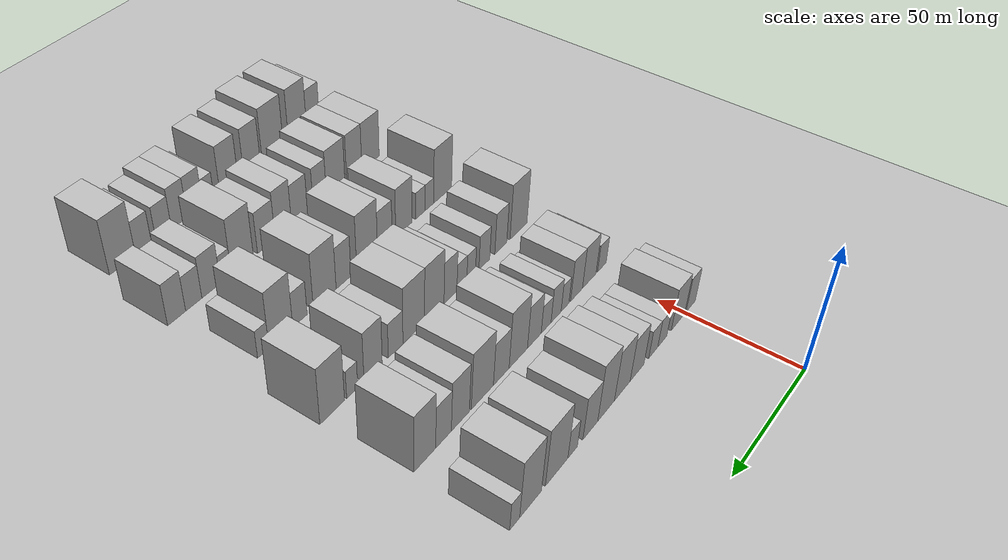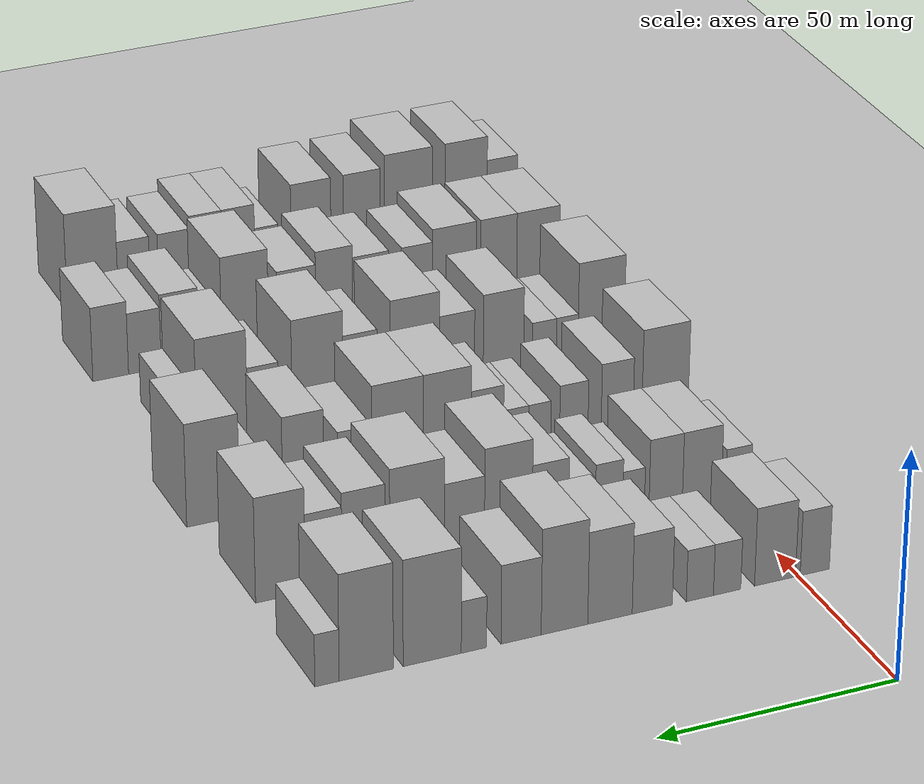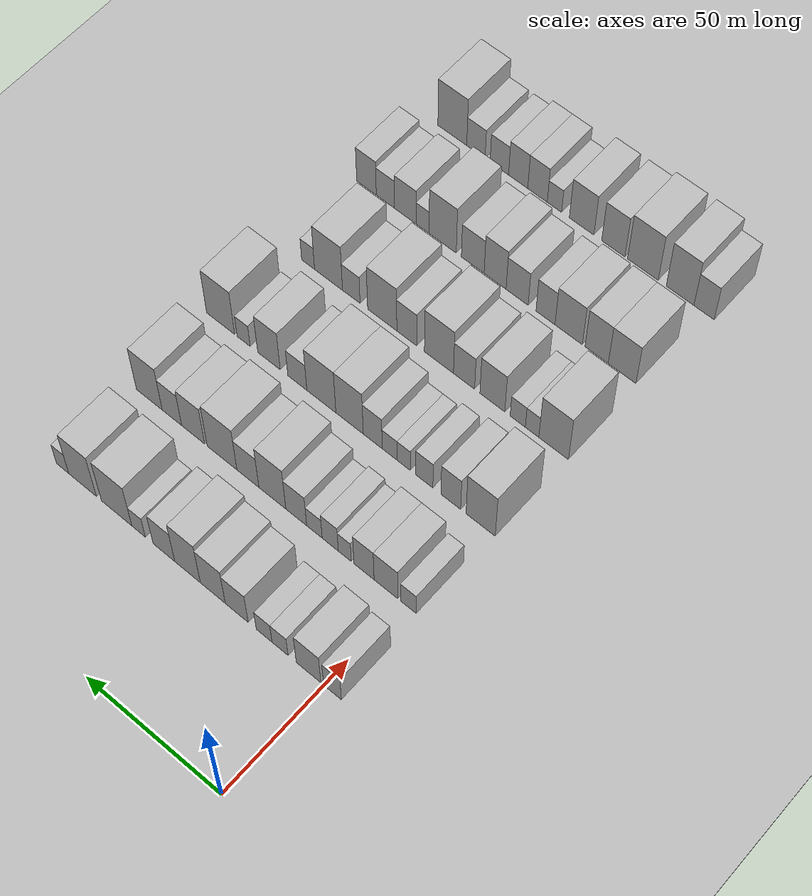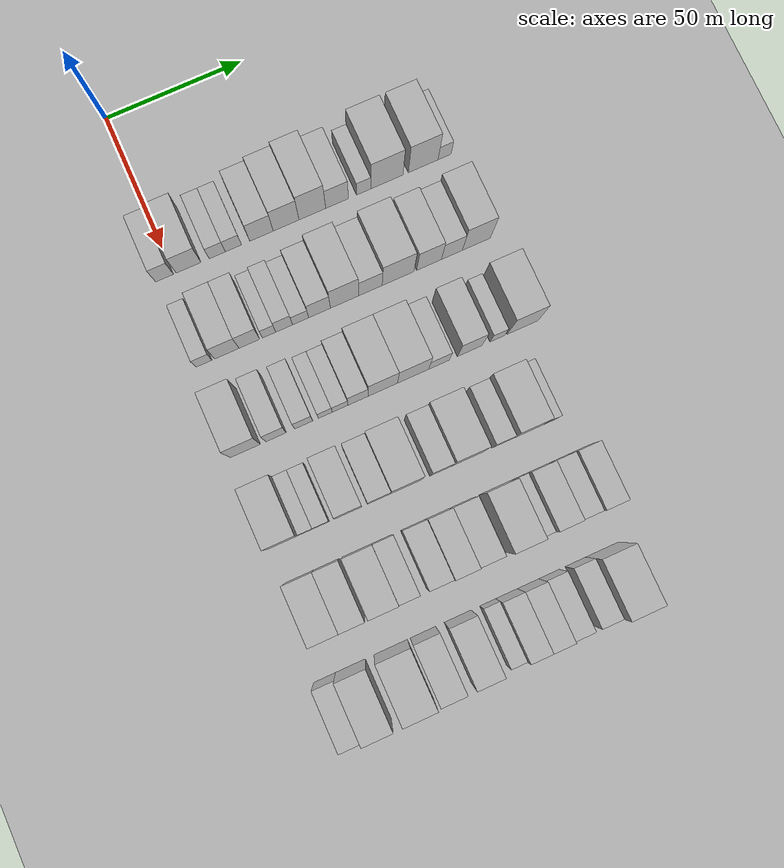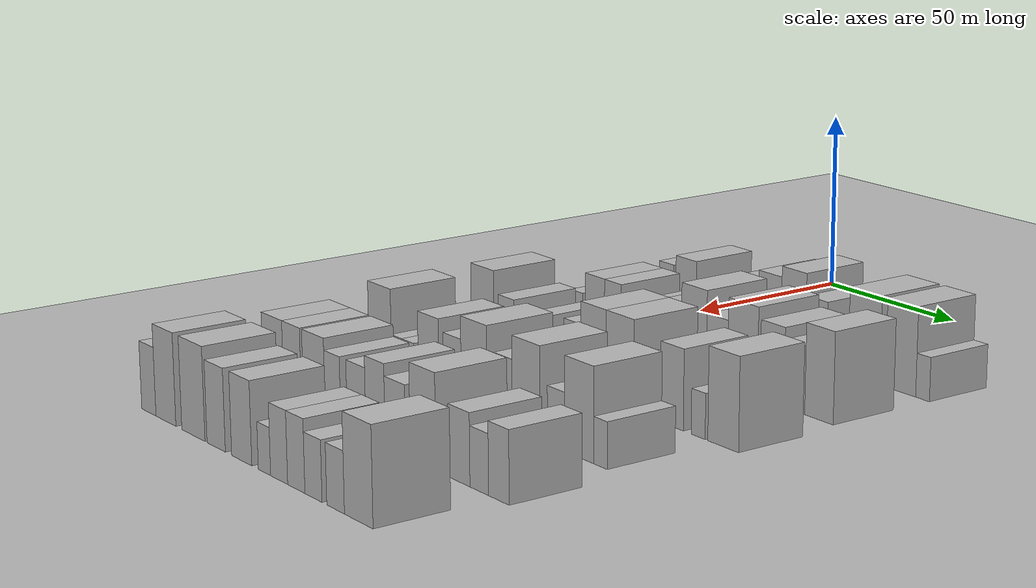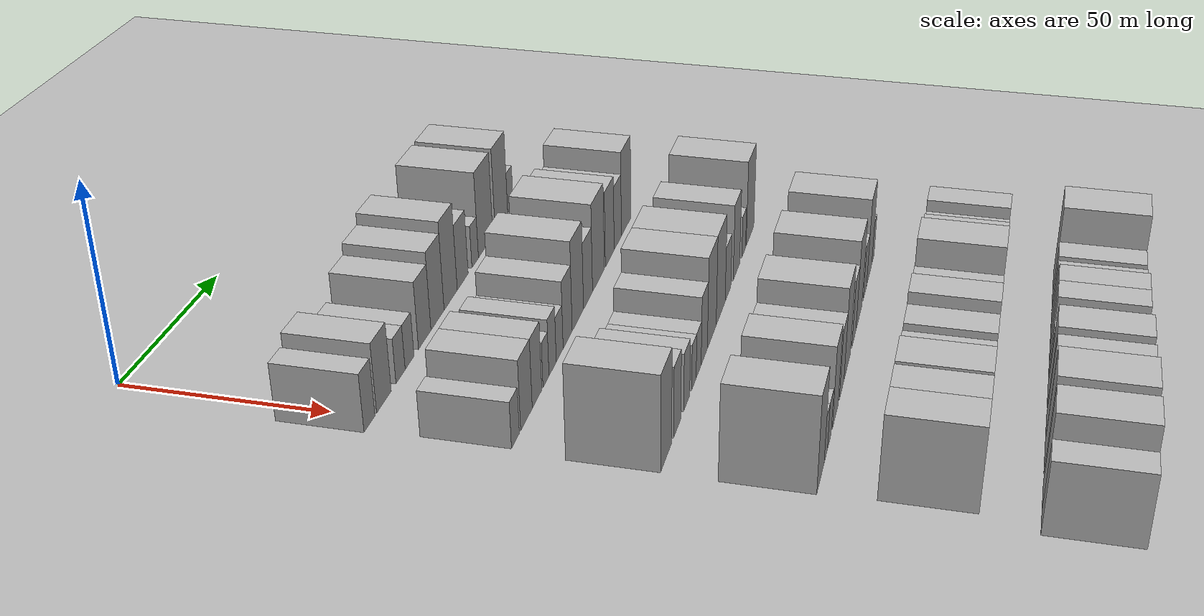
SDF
<sdf version="1.6">
 <world name="default">
  <include><name>ground_plane_1</name><uri>model://HANNAS_ground_plane</uri></include>
  <include>
   <name>ground_plane_2</name>
   <uri>model://HANNAS_ground_plane</uri>
   <pose>100 0 0  0 0 0</pose>
  </include>
  <model name="building_62">
   <static>1</static>
   <pose>50.0000 -3.1687 0 0.000000 0.000000 0.000000</pose>
   <link name="link">
    <pose>0 0 7.50 0 0 0</pose>
    <collision name="collision"><geometry><box><size>20.0000 6.4096 15.0000</size></box></geometry></collision>
    <visual name="visual">
     <cast_shadows>0</cast_shadows>
     <geometry><box><size>20.0000 6.4096 15.0000</size></box></geometry>
     <material>
      <script>
       <uri>model://HANNAS_wall/materials/scripts</uri>
       <uri>model://HANNAS_wall/materials/textures</uri>
       <name>vrc/HANNAS_wall</name>
      </script>
     </material>
    </visual>
   </link>
  </model>
  <model name="building_63">
   <static>1</static>
   <pose>50.0000 5.5113 0 0.000000 0.000000 0.000000</pose>
   <link name="link">
    <pose>0 0 9.00 0 0 0</pose>
    <collision name="collision"><geometry><box><size>20.0000 8.9502 18.0000</size></box></geometry></collision>
    <visual name="visual">
     <cast_shadows>0</cast_shadows>
     <geometry><box><size>20.0000 8.9502 18.0000</size></box></geometry>
     <material>
      <script>
       <uri>model://HANNAS_wall/materials/scripts</uri>
       <uri>model://HANNAS_wall/materials/textures</uri>
       <name>vrc/HANNAS_wall</name>
      </script>
     </material>
    </visual>
   </link>
  </model>
  <model name="building_64">
   <static>1</static>
   <pose>50.0000 15.9355 0 0.000000 0.000000 0.000000</pose>
   <link name="link">
    <pose>0 0 6.00 0 0 0</pose>
    <collision name="collision"><geometry><box><size>20.0000 5.8982 12.0000</size></box></geometry></collision>
    <visual name="visual">
     <cast_shadows>0</cast_shadows>
     <geometry><box><size>20.0000 5.8982 12.0000</size></box></geometry>
     <material>
      <script>
       <uri>model://HANNAS_wall/materials/scripts</uri>
       <uri>model://HANNAS_wall/materials/textures</uri>
       <name>vrc/HANNAS_wall</name>
      </script>
     </material>
    </visual>
   </link>
  </model>
  <model name="building_65">
   <static>1</static>
   <pose>50.0000 21.8032 0 0.000000 0.000000 0.000000</pose>
   <link name="link">
    <pose>0 0 6.00 0 0 0</pose>
    <collision name="collision"><geometry><box><size>20.0000 5.8372 12.0000</size></box></geometry></collision>
    <visual name="visual">
     <cast_shadows>0</cast_shadows>
     <geometry><box><size>20.0000 5.8372 12.0000</size></box></geometry>
     <material>
      <script>
       <uri>model://HANNAS_wall/materials/scripts</uri>
       <uri>model://HANNAS_wall/materials/textures</uri>
       <name>vrc/HANNAS_wall</name>
      </script>
     </material>
    </visual>
   </link>
  </model>
  <model name="building_66">
   <static>1</static>
   <pose>50.0000 32.0114 0 0.000000 0.000000 0.000000</pose>
   <link name="link">
    <pose>0 0 9.00 0 0 0</pose>
    <collision name="collision"><geometry><box><size>20.0000 8.5792 18.0000</size></box></geometry></collision>
    <visual name="visual">
     <cast_shadows>0</cast_shadows>
     <geometry><box><size>20.0000 8.5792 18.0000</size></box></geometry>
     <material>
      <script>
       <uri>model://HANNAS_wall/materials/scripts</uri>
       <uri>model://HANNAS_wall/materials/textures</uri>
       <name>vrc/HANNAS_wall</name>
      </script>
     </material>
    </visual>
   </link>
  </model>
  <model name="building_67">
   <static>1</static>
   <pose>50.0000 41.0126 0 0.000000 0.000000 0.000000</pose>
   <link name="link">
    <pose>0 0 10.50 0 0 0</pose>
    <collision name="collision"><geometry><box><size>20.0000 9.4231 21.0000</size></box></geometry></collision>
    <visual name="visual">
     <cast_shadows>0</cast_shadows>
     <geometry><box><size>20.0000 9.4231 21.0000</size></box></geometry>
     <material>
      <script>
       <uri>model://HANNAS_wall/materials/scripts</uri>
       <uri>model://HANNAS_wall/materials/textures</uri>
       <name>vrc/HANNAS_wall</name>
      </script>
     </material>
    </visual>
   </link>
  </model>
  <model name="building_68">
   <static>1</static>
   <pose>50.0000 50.6212 0 0.000000 0.000000 0.000000</pose>
   <link name="link">
    <pose>0 0 12.00 0 0 0</pose>
    <collision name="collision"><geometry><box><size>20.0000 9.7940 24.0000</size></box></geometry></collision>
    <visual name="visual">
     <cast_shadows>0</cast_shadows>
     <geometry><box><size>20.0000 9.7940 24.0000</size></box></geometry>
     <material>
      <script>
       <uri>model://HANNAS_wall/materials/scripts</uri>
       <uri>model://HANNAS_wall/materials/textures</uri>
       <name>vrc/HANNAS_wall</name>
      </script>
     </material>
    </visual>
   </link>
  </model>
  <model name="building_69">
   <static>1</static>
   <pose>50.0000 59.7070 0 0.000000 0.000000 0.000000</pose>
   <link name="link">
    <pose>0 0 9.00 0 0 0</pose>
    <collision name="collision"><geometry><box><size>20.0000 8.3777 18.0000</size></box></geometry></collision>
    <visual name="visual">
     <cast_shadows>0</cast_shadows>
     <geometry><box><size>20.0000 8.3777 18.0000</size></box></geometry>
     <material>
      <script>
       <uri>model://HANNAS_wall/materials/scripts</uri>
       <uri>model://HANNAS_wall/materials/textures</uri>
       <name>vrc/HANNAS_wall</name>
      </script>
     </material>
    </visual>
   </link>
  </model>
  <model name="building_70">
   <static>1</static>
   <pose>50.0000 69.5193 0 0.000000 0.000000 0.000000</pose>
   <link name="link">
    <pose>0 0 6.00 0 0 0</pose>
    <collision name="collision"><geometry><box><size>20.0000 5.2468 12.0000</size></box></geometry></collision>
    <visual name="visual">
     <cast_shadows>0</cast_shadows>
     <geometry><box><size>20.0000 5.2468 12.0000</size></box></geometry>
     <material>
      <script>
       <uri>model://HANNAS_wall/materials/scripts</uri>
       <uri>model://HANNAS_wall/materials/textures</uri>
       <name>vrc/HANNAS_wall</name>
      </script>
     </material>
    </visual>
   </link>
  </model>
  <model name="building_71">
   <static>1</static>
   <pose>50.0000 78.1094 0 0.000000 0.000000 0.000000</pose>
   <link name="link">
    <pose>0 0 12.00 0 0 0</pose>
    <collision name="collision"><geometry><box><size>20.0000 11.9334 24.0000</size></box></geometry></collision>
    <visual name="visual">
     <cast_shadows>0</cast_shadows>
     <geometry><box><size>20.0000 11.9334 24.0000</size></box></geometry>
     <material>
      <script>
       <uri>model://HANNAS_wall/materials/scripts</uri>
       <uri>model://HANNAS_wall/materials/textures</uri>
       <name>vrc/HANNAS_wall</name>
      </script>
     </material>
    </visual>
   </link>
  </model>
  <model name="building_72">
   <static>1</static>
   <pose>50.0000 91.5852 0 0.000000 0.000000 0.000000</pose>
   <link name="link">
    <pose>0 0 12.00 0 0 0</pose>
    <collision name="collision"><geometry><box><size>20.0000 11.0183 24.0000</size></box></geometry></collision>
    <visual name="visual">
     <cast_shadows>0</cast_shadows>
     <geometry><box><size>20.0000 11.0183 24.0000</size></box></geometry>
     <material>
      <script>
       <uri>model://HANNAS_wall/materials/scripts</uri>
       <uri>model://HANNAS_wall/materials/textures</uri>
       <name>vrc/HANNAS_wall</name>
      </script>
     </material>
    </visual>
   </link>
  </model>
  <model name="building_73">
   <static>1</static>
   <pose>50.0000 99.5503 0 0.000000 0.000000 0.000000</pose>
   <link name="link">
    <pose>0 0 6.00 0 0 0</pose>
    <collision name="collision"><geometry><box><size>20.0000 4.9118 12.0000</size></box></geometry></collision>
    <visual name="visual">
     <cast_shadows>0</cast_shadows>
     <geometry><box><size>20.0000 4.9118 12.0000</size></box></geometry>
     <material>
      <script>
       <uri>model://HANNAS_wall/materials/scripts</uri>
       <uri>model://HANNAS_wall/materials/textures</uri>
       <name>vrc/HANNAS_wall</name>
      </script>
     </material>
    </visual>
   </link>
  </model>
  <model name="building_182">
   <static>1</static>
   <pose>82.0000 -2.3805 0 0.000000 0.000000 0.000000</pose>
   <link name="link">
    <pose>0 0 6.00 0 0 0</pose>
    <collision name="collision"><geometry><box><size>20.0000 5.6722 12.0000</size></box></geometry></collision>
    <visual name="visual">
     <cast_shadows>0</cast_shadows>
     <geometry><box><size>20.0000 5.6722 12.0000</size></box></geometry>
     <material>
      <script>
       <uri>model://HANNAS_wall/materials/scripts</uri>
       <uri>model://HANNAS_wall/materials/textures</uri>
       <name>vrc/HANNAS_wall</name>
      </script>
     </material>
    </visual>
   </link>
  </model>
  <model name="building_183">
   <static>1</static>
   <pose>82.0000 5.8020 0 0.000000 0.000000 0.000000</pose>
   <link name="link">
    <pose>0 0 9.00 0 0 0</pose>
    <collision name="collision"><geometry><box><size>20.0000 8.6927 18.0000</size></box></geometry></collision>
    <visual name="visual">
     <cast_shadows>0</cast_shadows>
     <geometry><box><size>20.0000 8.6927 18.0000</size></box></geometry>
     <material>
      <script>
       <uri>model://HANNAS_wall/materials/scripts</uri>
       <uri>model://HANNAS_wall/materials/textures</uri>
       <name>vrc/HANNAS_wall</name>
      </script>
     </material>
    </visual>
   </link>
  </model>
  <model name="building_184">
   <static>1</static>
   <pose>82.0000 13.8567 0 0.000000 0.000000 0.000000</pose>
   <link name="link">
    <pose>0 0 9.00 0 0 0</pose>
    <collision name="collision"><geometry><box><size>20.0000 7.4168 18.0000</size></box></geometry></collision>
    <visual name="visual">
     <cast_shadows>0</cast_shadows>
     <geometry><box><size>20.0000 7.4168 18.0000</size></box></geometry>
     <material>
      <script>
       <uri>model://HANNAS_wall/materials/scripts</uri>
       <uri>model://HANNAS_wall/materials/textures</uri>
       <name>vrc/HANNAS_wall</name>
      </script>
     </material>
    </visual>
   </link>
  </model>
  <model name="building_185">
   <static>1</static>
   <pose>82.0000 20.9724 0 0.000000 0.000000 0.000000</pose>
   <link name="link">
    <pose>0 0 6.00 0 0 0</pose>
    <collision name="collision"><geometry><box><size>20.0000 4.8146 12.0000</size></box></geometry></collision>
    <visual name="visual">
     <cast_shadows>0</cast_shadows>
     <geometry><box><size>20.0000 4.8146 12.0000</size></box></geometry>
     <material>
      <script>
       <uri>model://HANNAS_wall/materials/scripts</uri>
       <uri>model://HANNAS_wall/materials/textures</uri>
       <name>vrc/HANNAS_wall</name>
      </script>
     </material>
    </visual>
   </link>
  </model>
  <model name="building_186">
   <static>1</static>
   <pose>82.0000 26.3966 0 0.000000 0.000000 0.000000</pose>
   <link name="link">
    <pose>0 0 7.50 0 0 0</pose>
    <collision name="collision"><geometry><box><size>20.0000 6.0336 15.0000</size></box></geometry></collision>
    <visual name="visual">
     <cast_shadows>0</cast_shadows>
     <geometry><box><size>20.0000 6.0336 15.0000</size></box></geometry>
     <material>
      <script>
       <uri>model://HANNAS_wall/materials/scripts</uri>
       <uri>model://HANNAS_wall/materials/textures</uri>
       <name>vrc/HANNAS_wall</name>
      </script>
     </material>
    </visual>
   </link>
  </model>
  <model name="building_187">
   <static>1</static>
   <pose>82.0000 32.3226 0 0.000000 0.000000 0.000000</pose>
   <link name="link">
    <pose>0 0 6.00 0 0 0</pose>
    <collision name="collision"><geometry><box><size>20.0000 5.8184 12.0000</size></box></geometry></collision>
    <visual name="visual">
     <cast_shadows>0</cast_shadows>
     <geometry><box><size>20.0000 5.8184 12.0000</size></box></geometry>
     <material>
      <script>
       <uri>model://HANNAS_wall/materials/scripts</uri>
       <uri>model://HANNAS_wall/materials/textures</uri>
       <name>vrc/HANNAS_wall</name>
      </script>
     </material>
    </visual>
   </link>
  </model>
  <model name="building_188">
   <static>1</static>
   <pose>82.0000 39.1834 0 0.000000 0.000000 0.000000</pose>
   <link name="link">
    <pose>0 0 9.00 0 0 0</pose>
    <collision name="collision"><geometry><box><size>20.0000 7.9033 18.0000</size></box></geometry></collision>
    <visual name="visual">
     <cast_shadows>0</cast_shadows>
     <geometry><box><size>20.0000 7.9033 18.0000</size></box></geometry>
     <material>
      <script>
       <uri>model://HANNAS_wall/materials/scripts</uri>
       <uri>model://HANNAS_wall/materials/textures</uri>
       <name>vrc/HANNAS_wall</name>
      </script>
     </material>
    </visual>
   </link>
  </model>
  <model name="building_189">
   <static>1</static>
   <pose>82.0000 48.2809 0 0.000000 0.000000 0.000000</pose>
   <link name="link">
    <pose>0 0 12.00 0 0 0</pose>
    <collision name="collision"><geometry><box><size>20.0000 10.2916 24.0000</size></box></geometry></collision>
    <visual name="visual">
     <cast_shadows>0</cast_shadows>
     <geometry><box><size>20.0000 10.2916 24.0000</size></box></geometry>
     <material>
      <script>
       <uri>model://HANNAS_wall/materials/scripts</uri>
       <uri>model://HANNAS_wall/materials/textures</uri>
       <name>vrc/HANNAS_wall</name>
      </script>
     </material>
    </visual>
   </link>
  </model>
  <model name="building_190">
   <static>1</static>
   <pose>82.0000 57.6789 0 0.000000 0.000000 0.000000</pose>
   <link name="link">
    <pose>0 0 9.00 0 0 0</pose>
    <collision name="collision"><geometry><box><size>20.0000 8.5044 18.0000</size></box></geometry></collision>
    <visual name="visual">
     <cast_shadows>0</cast_shadows>
     <geometry><box><size>20.0000 8.5044 18.0000</size></box></geometry>
     <material>
      <script>
       <uri>model://HANNAS_wall/materials/scripts</uri>
       <uri>model://HANNAS_wall/materials/textures</uri>
       <name>vrc/HANNAS_wall</name>
      </script>
     </material>
    </visual>
   </link>
  </model>
  <model name="building_191">
   <static>1</static>
   <pose>82.0000 67.7408 0 0.000000 0.000000 0.000000</pose>
   <link name="link">
    <pose>0 0 12.00 0 0 0</pose>
    <collision name="collision"><geometry><box><size>20.0000 11.6195 24.0000</size></box></geometry></collision>
    <visual name="visual">
     <cast_shadows>0</cast_shadows>
     <geometry><box><size>20.0000 11.6195 24.0000</size></box></geometry>
     <material>
      <script>
       <uri>model://HANNAS_wall/materials/scripts</uri>
       <uri>model://HANNAS_wall/materials/textures</uri>
       <name>vrc/HANNAS_wall</name>
      </script>
     </material>
    </visual>
   </link>
  </model>
  <model name="building_192">
   <static>1</static>
   <pose>82.0000 79.0883 0 0.000000 0.000000 0.000000</pose>
   <link name="link">
    <pose>0 0 10.50 0 0 0</pose>
    <collision name="collision"><geometry><box><size>20.0000 9.0754 21.0000</size></box></geometry></collision>
    <visual name="visual">
     <cast_shadows>0</cast_shadows>
     <geometry><box><size>20.0000 9.0754 21.0000</size></box></geometry>
     <material>
      <script>
       <uri>model://HANNAS_wall/materials/scripts</uri>
       <uri>model://HANNAS_wall/materials/textures</uri>
       <name>vrc/HANNAS_wall</name>
      </script>
     </material>
    </visual>
   </link>
  </model>
  <model name="building_193">
   <static>1</static>
   <pose>82.0000 87.4748 0 0.000000 0.000000 0.000000</pose>
   <link name="link">
    <pose>0 0 9.00 0 0 0</pose>
    <collision name="collision"><geometry><box><size>20.0000 7.6976 18.0000</size></box></geometry></collision>
    <visual name="visual">
     <cast_shadows>0</cast_shadows>
     <geometry><box><size>20.0000 7.6976 18.0000</size></box></geometry>
     <material>
      <script>
       <uri>model://HANNAS_wall/materials/scripts</uri>
       <uri>model://HANNAS_wall/materials/textures</uri>
       <name>vrc/HANNAS_wall</name>
      </script>
     </material>
    </visual>
   </link>
  </model>
  <model name="building_194">
   <static>1</static>
   <pose>82.0000 96.5035 0 0.000000 0.000000 0.000000</pose>
   <link name="link">
    <pose>0 0 12.00 0 0 0</pose>
    <collision name="collision"><geometry><box><size>20.0000 10.3599 24.0000</size></box></geometry></collision>
    <visual name="visual">
     <cast_shadows>0</cast_shadows>
     <geometry><box><size>20.0000 10.3599 24.0000</size></box></geometry>
     <material>
      <script>
       <uri>model://HANNAS_wall/materials/scripts</uri>
       <uri>model://HANNAS_wall/materials/textures</uri>
       <name>vrc/HANNAS_wall</name>
      </script>
     </material>
    </visual>
   </link>
  </model>
  <model name="building_306">
   <static>1</static>
   <pose>114.0000 -1.3001 0 0.000000 0.000000 0.000000</pose>
   <link name="link">
    <pose>0 0 12.00 0 0 0</pose>
    <collision name="collision"><geometry><box><size>20.0000 10.6299 24.0000</size></box></geometry></collision>
    <visual name="visual">
     <cast_shadows>0</cast_shadows>
     <geometry><box><size>20.0000 10.6299 24.0000</size></box></geometry>
     <material>
      <script>
       <uri>model://HANNAS_wall/materials/scripts</uri>
       <uri>model://HANNAS_wall/materials/textures</uri>
       <name>vrc/HANNAS_wall</name>
      </script>
     </material>
    </visual>
   </link>
  </model>
  <model name="building_307">
   <static>1</static>
   <pose>114.0000 9.6383 0 0.000000 0.000000 0.000000</pose>
   <link name="link">
    <pose>0 0 9.00 0 0 0</pose>
    <collision name="collision"><geometry><box><size>20.0000 7.2469 18.0000</size></box></geometry></collision>
    <visual name="visual">
     <cast_shadows>0</cast_shadows>
     <geometry><box><size>20.0000 7.2469 18.0000</size></box></geometry>
     <material>
      <script>
       <uri>model://HANNAS_wall/materials/scripts</uri>
       <uri>model://HANNAS_wall/materials/textures</uri>
       <name>vrc/HANNAS_wall</name>
      </script>
     </material>
    </visual>
   </link>
  </model>
  <model name="building_308">
   <static>1</static>
   <pose>114.0000 19.4652 0 0.000000 0.000000 0.000000</pose>
   <link name="link">
    <pose>0 0 7.50 0 0 0</pose>
    <collision name="collision"><geometry><box><size>20.0000 6.4070 15.0000</size></box></geometry></collision>
    <visual name="visual">
     <cast_shadows>0</cast_shadows>
     <geometry><box><size>20.0000 6.4070 15.0000</size></box></geometry>
     <material>
      <script>
       <uri>model://HANNAS_wall/materials/scripts</uri>
       <uri>model://HANNAS_wall/materials/textures</uri>
       <name>vrc/HANNAS_wall</name>
      </script>
     </material>
    </visual>
   </link>
  </model>
  <model name="building_309">
   <static>1</static>
   <pose>114.0000 27.1573 0 0.000000 0.000000 0.000000</pose>
   <link name="link">
    <pose>0 0 6.00 0 0 0</pose>
    <collision name="collision"><geometry><box><size>20.0000 4.9774 12.0000</size></box></geometry></collision>
    <visual name="visual">
     <cast_shadows>0</cast_shadows>
     <geometry><box><size>20.0000 4.9774 12.0000</size></box></geometry>
     <material>
      <script>
       <uri>model://HANNAS_wall/materials/scripts</uri>
       <uri>model://HANNAS_wall/materials/textures</uri>
       <name>vrc/HANNAS_wall</name>
      </script>
     </material>
    </visual>
   </link>
  </model>
  <model name="building_310">
   <static>1</static>
   <pose>114.0000 32.4495 0 0.000000 0.000000 0.000000</pose>
   <link name="link">
    <pose>0 0 6.00 0 0 0</pose>
    <collision name="collision"><geometry><box><size>20.0000 5.6070 12.0000</size></box></geometry></collision>
    <visual name="visual">
     <cast_shadows>0</cast_shadows>
     <geometry><box><size>20.0000 5.6070 12.0000</size></box></geometry>
     <material>
      <script>
       <uri>model://HANNAS_wall/materials/scripts</uri>
       <uri>model://HANNAS_wall/materials/textures</uri>
       <name>vrc/HANNAS_wall</name>
      </script>
     </material>
    </visual>
   </link>
  </model>
  <model name="building_311">
   <static>1</static>
   <pose>114.0000 38.8557 0 0.000000 0.000000 0.000000</pose>
   <link name="link">
    <pose>0 0 9.00 0 0 0</pose>
    <collision name="collision"><geometry><box><size>20.0000 7.2054 18.0000</size></box></geometry></collision>
    <visual name="visual">
     <cast_shadows>0</cast_shadows>
     <geometry><box><size>20.0000 7.2054 18.0000</size></box></geometry>
     <material>
      <script>
       <uri>model://HANNAS_wall/materials/scripts</uri>
       <uri>model://HANNAS_wall/materials/textures</uri>
       <name>vrc/HANNAS_wall</name>
      </script>
     </material>
    </visual>
   </link>
  </model>
  <model name="building_312">
   <static>1</static>
   <pose>114.0000 47.7189 0 0.000000 0.000000 0.000000</pose>
   <link name="link">
    <pose>0 0 12.00 0 0 0</pose>
    <collision name="collision"><geometry><box><size>20.0000 10.5210 24.0000</size></box></geometry></collision>
    <visual name="visual">
     <cast_shadows>0</cast_shadows>
     <geometry><box><size>20.0000 10.5210 24.0000</size></box></geometry>
     <material>
      <script>
       <uri>model://HANNAS_wall/materials/scripts</uri>
       <uri>model://HANNAS_wall/materials/textures</uri>
       <name>vrc/HANNAS_wall</name>
      </script>
     </material>
    </visual>
   </link>
  </model>
  <model name="building_313">
   <static>1</static>
   <pose>114.0000 58.6120 0 0.000000 0.000000 0.000000</pose>
   <link name="link">
    <pose>0 0 12.00 0 0 0</pose>
    <collision name="collision"><geometry><box><size>20.0000 11.2652 24.0000</size></box></geometry></collision>
    <visual name="visual">
     <cast_shadows>0</cast_shadows>
     <geometry><box><size>20.0000 11.2652 24.0000</size></box></geometry>
     <material>
      <script>
       <uri>model://HANNAS_wall/materials/scripts</uri>
       <uri>model://HANNAS_wall/materials/textures</uri>
       <name>vrc/HANNAS_wall</name>
      </script>
     </material>
    </visual>
   </link>
  </model>
  <model name="building_314">
   <static>1</static>
   <pose>114.0000 67.9713 0 0.000000 0.000000 0.000000</pose>
   <link name="link">
    <pose>0 0 7.50 0 0 0</pose>
    <collision name="collision"><geometry><box><size>20.0000 7.4534 15.0000</size></box></geometry></collision>
    <visual name="visual">
     <cast_shadows>0</cast_shadows>
     <geometry><box><size>20.0000 7.4534 15.0000</size></box></geometry>
     <material>
      <script>
       <uri>model://HANNAS_wall/materials/scripts</uri>
       <uri>model://HANNAS_wall/materials/textures</uri>
       <name>vrc/HANNAS_wall</name>
      </script>
     </material>
    </visual>
   </link>
  </model>
  <model name="building_315">
   <static>1</static>
   <pose>114.0000 79.1511 0 0.000000 0.000000 0.000000</pose>
   <link name="link">
    <pose>0 0 10.50 0 0 0</pose>
    <collision name="collision"><geometry><box><size>20.0000 8.9062 21.0000</size></box></geometry></collision>
    <visual name="visual">
     <cast_shadows>0</cast_shadows>
     <geometry><box><size>20.0000 8.9062 21.0000</size></box></geometry>
     <material>
      <script>
       <uri>model://HANNAS_wall/materials/scripts</uri>
       <uri>model://HANNAS_wall/materials/textures</uri>
       <name>vrc/HANNAS_wall</name>
      </script>
     </material>
    </visual>
   </link>
  </model>
  <model name="building_316">
   <static>1</static>
   <pose>114.0000 89.2187 0 0.000000 0.000000 0.000000</pose>
   <link name="link">
    <pose>0 0 6.00 0 0 0</pose>
    <collision name="collision"><geometry><box><size>20.0000 5.2290 12.0000</size></box></geometry></collision>
    <visual name="visual">
     <cast_shadows>0</cast_shadows>
     <geometry><box><size>20.0000 5.2290 12.0000</size></box></geometry>
     <material>
      <script>
       <uri>model://HANNAS_wall/materials/scripts</uri>
       <uri>model://HANNAS_wall/materials/textures</uri>
       <name>vrc/HANNAS_wall</name>
      </script>
     </material>
    </visual>
   </link>
  </model>
  <model name="building_317">
   <static>1</static>
   <pose>114.0000 98.4865 0 0.000000 0.000000 0.000000</pose>
   <link name="link">
    <pose>0 0 12.00 0 0 0</pose>
    <collision name="collision"><geometry><box><size>20.0000 11.3066 24.0000</size></box></geometry></collision>
    <visual name="visual">
     <cast_shadows>0</cast_shadows>
     <geometry><box><size>20.0000 11.3066 24.0000</size></box></geometry>
     <material>
      <script>
       <uri>model://HANNAS_wall/materials/scripts</uri>
       <uri>model://HANNAS_wall/materials/textures</uri>
       <name>vrc/HANNAS_wall</name>
      </script>
     </material>
    </visual>
   </link>
  </model>
  <model name="building_423">
   <static>1</static>
   <pose>146.0000 -1.5550 0 0.000000 0.000000 0.000000</pose>
   <link name="link">
    <pose>0 0 12.00 0 0 0</pose>
    <collision name="collision"><geometry><box><size>20.0000 10.8734 24.0000</size></box></geometry></collision>
    <visual name="visual">
     <cast_shadows>0</cast_shadows>
     <geometry><box><size>20.0000 10.8734 24.0000</size></box></geometry>
     <material>
      <script>
       <uri>model://HANNAS_wall/materials/scripts</uri>
       <uri>model://HANNAS_wall/materials/textures</uri>
       <name>vrc/HANNAS_wall</name>
      </script>
     </material>
    </visual>
   </link>
  </model>
  <model name="building_424">
   <static>1</static>
   <pose>146.0000 6.3754 0 0.000000 0.000000 0.000000</pose>
   <link name="link">
    <pose>0 0 6.00 0 0 0</pose>
    <collision name="collision"><geometry><box><size>20.0000 4.9874 12.0000</size></box></geometry></collision>
    <visual name="visual">
     <cast_shadows>0</cast_shadows>
     <geometry><box><size>20.0000 4.9874 12.0000</size></box></geometry>
     <material>
      <script>
       <uri>model://HANNAS_wall/materials/scripts</uri>
       <uri>model://HANNAS_wall/materials/textures</uri>
       <name>vrc/HANNAS_wall</name>
      </script>
     </material>
    </visual>
   </link>
  </model>
  <model name="building_425">
   <static>1</static>
   <pose>146.0000 11.6806 0 0.000000 0.000000 0.000000</pose>
   <link name="link">
    <pose>0 0 6.00 0 0 0</pose>
    <collision name="collision"><geometry><box><size>20.0000 5.6230 12.0000</size></box></geometry></collision>
    <visual name="visual">
     <cast_shadows>0</cast_shadows>
     <geometry><box><size>20.0000 5.6230 12.0000</size></box></geometry>
     <material>
      <script>
       <uri>model://HANNAS_wall/materials/scripts</uri>
       <uri>model://HANNAS_wall/materials/textures</uri>
       <name>vrc/HANNAS_wall</name>
      </script>
     </material>
    </visual>
   </link>
  </model>
  <model name="building_426">
   <static>1</static>
   <pose>146.0000 21.1675 0 0.000000 0.000000 0.000000</pose>
   <link name="link">
    <pose>0 0 10.50 0 0 0</pose>
    <collision name="collision"><geometry><box><size>20.0000 9.3507 21.0000</size></box></geometry></collision>
    <visual name="visual">
     <cast_shadows>0</cast_shadows>
     <geometry><box><size>20.0000 9.3507 21.0000</size></box></geometry>
     <material>
      <script>
       <uri>model://HANNAS_wall/materials/scripts</uri>
       <uri>model://HANNAS_wall/materials/textures</uri>
       <name>vrc/HANNAS_wall</name>
      </script>
     </material>
    </visual>
   </link>
  </model>
  <model name="building_427">
   <static>1</static>
   <pose>146.0000 31.8472 0 0.000000 0.000000 0.000000</pose>
   <link name="link">
    <pose>0 0 9.00 0 0 0</pose>
    <collision name="collision"><geometry><box><size>20.0000 8.0089 18.0000</size></box></geometry></collision>
    <visual name="visual">
     <cast_shadows>0</cast_shadows>
     <geometry><box><size>20.0000 8.0089 18.0000</size></box></geometry>
     <material>
      <script>
       <uri>model://HANNAS_wall/materials/scripts</uri>
       <uri>model://HANNAS_wall/materials/textures</uri>
       <name>vrc/HANNAS_wall</name>
      </script>
     </material>
    </visual>
   </link>
  </model>
  <model name="building_428">
   <static>1</static>
   <pose>146.0000 41.4174 0 0.000000 0.000000 0.000000</pose>
   <link name="link">
    <pose>0 0 12.00 0 0 0</pose>
    <collision name="collision"><geometry><box><size>20.0000 11.1314 24.0000</size></box></geometry></collision>
    <visual name="visual">
     <cast_shadows>0</cast_shadows>
     <geometry><box><size>20.0000 11.1314 24.0000</size></box></geometry>
     <material>
      <script>
       <uri>model://HANNAS_wall/materials/scripts</uri>
       <uri>model://HANNAS_wall/materials/textures</uri>
       <name>vrc/HANNAS_wall</name>
      </script>
     </material>
    </visual>
   </link>
  </model>
  <model name="building_429">
   <static>1</static>
   <pose>146.0000 53.8142 0 0.000000 0.000000 0.000000</pose>
   <link name="link">
    <pose>0 0 9.00 0 0 0</pose>
    <collision name="collision"><geometry><box><size>20.0000 7.6622 18.0000</size></box></geometry></collision>
    <visual name="visual">
     <cast_shadows>0</cast_shadows>
     <geometry><box><size>20.0000 7.6622 18.0000</size></box></geometry>
     <material>
      <script>
       <uri>model://HANNAS_wall/materials/scripts</uri>
       <uri>model://HANNAS_wall/materials/textures</uri>
       <name>vrc/HANNAS_wall</name>
      </script>
     </material>
    </visual>
   </link>
  </model>
  <model name="building_430">
   <static>1</static>
   <pose>146.0000 63.3608 0 0.000000 0.000000 0.000000</pose>
   <link name="link">
    <pose>0 0 12.00 0 0 0</pose>
    <collision name="collision"><geometry><box><size>20.0000 11.4310 24.0000</size></box></geometry></collision>
    <visual name="visual">
     <cast_shadows>0</cast_shadows>
     <geometry><box><size>20.0000 11.4310 24.0000</size></box></geometry>
     <material>
      <script>
       <uri>model://HANNAS_wall/materials/scripts</uri>
       <uri>model://HANNAS_wall/materials/textures</uri>
       <name>vrc/HANNAS_wall</name>
      </script>
     </material>
    </visual>
   </link>
  </model>
  <model name="building_431">
   <static>1</static>
   <pose>146.0000 75.5468 0 0.000000 0.000000 0.000000</pose>
   <link name="link">
    <pose>0 0 7.50 0 0 0</pose>
    <collision name="collision"><geometry><box><size>20.0000 6.9409 15.0000</size></box></geometry></collision>
    <visual name="visual">
     <cast_shadows>0</cast_shadows>
     <geometry><box><size>20.0000 6.9409 15.0000</size></box></geometry>
     <material>
      <script>
       <uri>model://HANNAS_wall/materials/scripts</uri>
       <uri>model://HANNAS_wall/materials/textures</uri>
       <name>vrc/HANNAS_wall</name>
      </script>
     </material>
    </visual>
   </link>
  </model>
  <model name="building_432">
   <static>1</static>
   <pose>146.0000 84.6144 0 0.000000 0.000000 0.000000</pose>
   <link name="link">
    <pose>0 0 12.00 0 0 0</pose>
    <collision name="collision"><geometry><box><size>20.0000 11.1942 24.0000</size></box></geometry></collision>
    <visual name="visual">
     <cast_shadows>0</cast_shadows>
     <geometry><box><size>20.0000 11.1942 24.0000</size></box></geometry>
     <material>
      <script>
       <uri>model://HANNAS_wall/materials/scripts</uri>
       <uri>model://HANNAS_wall/materials/textures</uri>
       <name>vrc/HANNAS_wall</name>
      </script>
     </material>
    </visual>
   </link>
  </model>
  <model name="building_433">
   <static>1</static>
   <pose>146.0000 92.8080 0 0.000000 0.000000 0.000000</pose>
   <link name="link">
    <pose>0 0 6.00 0 0 0</pose>
    <collision name="collision"><geometry><box><size>20.0000 5.1931 12.0000</size></box></geometry></collision>
    <visual name="visual">
     <cast_shadows>0</cast_shadows>
     <geometry><box><size>20.0000 5.1931 12.0000</size></box></geometry>
     <material>
      <script>
       <uri>model://HANNAS_wall/materials/scripts</uri>
       <uri>model://HANNAS_wall/materials/textures</uri>
       <name>vrc/HANNAS_wall</name>
      </script>
     </material>
    </visual>
   </link>
  </model>
  <model name="building_539">
   <static>1</static>
   <pose>178.0000 -1.1630 0 0.000000 0.000000 0.000000</pose>
   <link name="link">
    <pose>0 0 10.50 0 0 0</pose>
    <collision name="collision"><geometry><box><size>20.0000 10.2106 21.0000</size></box></geometry></collision>
    <visual name="visual">
     <cast_shadows>0</cast_shadows>
     <geometry><box><size>20.0000 10.2106 21.0000</size></box></geometry>
     <material>
      <script>
       <uri>model://HANNAS_wall/materials/scripts</uri>
       <uri>model://HANNAS_wall/materials/textures</uri>
       <name>vrc/HANNAS_wall</name>
      </script>
     </material>
    </visual>
   </link>
  </model>
  <model name="building_540">
   <static>1</static>
   <pose>178.0000 8.2758 0 0.000000 0.000000 0.000000</pose>
   <link name="link">
    <pose>0 0 10.50 0 0 0</pose>
    <collision name="collision"><geometry><box><size>20.0000 8.6669 21.0000</size></box></geometry></collision>
    <visual name="visual">
     <cast_shadows>0</cast_shadows>
     <geometry><box><size>20.0000 8.6669 21.0000</size></box></geometry>
     <material>
      <script>
       <uri>model://HANNAS_wall/materials/scripts</uri>
       <uri>model://HANNAS_wall/materials/textures</uri>
       <name>vrc/HANNAS_wall</name>
      </script>
     </material>
    </visual>
   </link>
  </model>
  <model name="building_541">
   <static>1</static>
   <pose>178.0000 18.7589 0 0.000000 0.000000 0.000000</pose>
   <link name="link">
    <pose>0 0 10.50 0 0 0</pose>
    <collision name="collision"><geometry><box><size>20.0000 10.2993 21.0000</size></box></geometry></collision>
    <visual name="visual">
     <cast_shadows>0</cast_shadows>
     <geometry><box><size>20.0000 10.2993 21.0000</size></box></geometry>
     <material>
      <script>
       <uri>model://HANNAS_wall/materials/scripts</uri>
       <uri>model://HANNAS_wall/materials/textures</uri>
       <name>vrc/HANNAS_wall</name>
      </script>
     </material>
    </visual>
   </link>
  </model>
  <model name="building_542">
   <static>1</static>
   <pose>178.0000 27.5186 0 0.000000 0.000000 0.000000</pose>
   <link name="link">
    <pose>0 0 9.00 0 0 0</pose>
    <collision name="collision"><geometry><box><size>20.0000 7.2201 18.0000</size></box></geometry></collision>
    <visual name="visual">
     <cast_shadows>0</cast_shadows>
     <geometry><box><size>20.0000 7.2201 18.0000</size></box></geometry>
     <material>
      <script>
       <uri>model://HANNAS_wall/materials/scripts</uri>
       <uri>model://HANNAS_wall/materials/textures</uri>
       <name>vrc/HANNAS_wall</name>
      </script>
     </material>
    </visual>
   </link>
  </model>
  <model name="building_543">
   <static>1</static>
   <pose>178.0000 38.3515 0 0.000000 0.000000 0.000000</pose>
   <link name="link">
    <pose>0 0 9.00 0 0 0</pose>
    <collision name="collision"><geometry><box><size>20.0000 8.4457 18.0000</size></box></geometry></collision>
    <visual name="visual">
     <cast_shadows>0</cast_shadows>
     <geometry><box><size>20.0000 8.4457 18.0000</size></box></geometry>
     <material>
      <script>
       <uri>model://HANNAS_wall/materials/scripts</uri>
       <uri>model://HANNAS_wall/materials/textures</uri>
       <name>vrc/HANNAS_wall</name>
      </script>
     </material>
    </visual>
   </link>
  </model>
  <model name="building_544">
   <static>1</static>
   <pose>178.0000 46.8348 0 0.000000 0.000000 0.000000</pose>
   <link name="link">
    <pose>0 0 10.50 0 0 0</pose>
    <collision name="collision"><geometry><box><size>20.0000 8.5209 21.0000</size></box></geometry></collision>
    <visual name="visual">
     <cast_shadows>0</cast_shadows>
     <geometry><box><size>20.0000 8.5209 21.0000</size></box></geometry>
     <material>
      <script>
       <uri>model://HANNAS_wall/materials/scripts</uri>
       <uri>model://HANNAS_wall/materials/textures</uri>
       <name>vrc/HANNAS_wall</name>
      </script>
     </material>
    </visual>
   </link>
  </model>
  <model name="building_545">
   <static>1</static>
   <pose>178.0000 55.5379 0 0.000000 0.000000 0.000000</pose>
   <link name="link">
    <pose>0 0 9.00 0 0 0</pose>
    <collision name="collision"><geometry><box><size>20.0000 8.8853 18.0000</size></box></geometry></collision>
    <visual name="visual">
     <cast_shadows>0</cast_shadows>
     <geometry><box><size>20.0000 8.8853 18.0000</size></box></geometry>
     <material>
      <script>
       <uri>model://HANNAS_wall/materials/scripts</uri>
       <uri>model://HANNAS_wall/materials/textures</uri>
       <name>vrc/HANNAS_wall</name>
      </script>
     </material>
    </visual>
   </link>
  </model>
  <model name="building_546">
   <static>1</static>
   <pose>178.0000 67.3443 0 0.000000 0.000000 0.000000</pose>
   <link name="link">
    <pose>0 0 12.00 0 0 0</pose>
    <collision name="collision"><geometry><box><size>20.0000 10.7276 24.0000</size></box></geometry></collision>
    <visual name="visual">
     <cast_shadows>0</cast_shadows>
     <geometry><box><size>20.0000 10.7276 24.0000</size></box></geometry>
     <material>
      <script>
       <uri>model://HANNAS_wall/materials/scripts</uri>
       <uri>model://HANNAS_wall/materials/textures</uri>
       <name>vrc/HANNAS_wall</name>
      </script>
     </material>
    </visual>
   </link>
  </model>
  <model name="building_547">
   <static>1</static>
   <pose>178.0000 75.2999 0 0.000000 0.000000 0.000000</pose>
   <link name="link">
    <pose>0 0 6.00 0 0 0</pose>
    <collision name="collision"><geometry><box><size>20.0000 5.1835 12.0000</size></box></geometry></collision>
    <visual name="visual">
     <cast_shadows>0</cast_shadows>
     <geometry><box><size>20.0000 5.1835 12.0000</size></box></geometry>
     <material>
      <script>
       <uri>model://HANNAS_wall/materials/scripts</uri>
       <uri>model://HANNAS_wall/materials/textures</uri>
       <name>vrc/HANNAS_wall</name>
      </script>
     </material>
    </visual>
   </link>
  </model>
  <model name="building_548">
   <static>1</static>
   <pose>178.0000 82.1963 0 0.000000 0.000000 0.000000</pose>
   <link name="link">
    <pose>0 0 9.00 0 0 0</pose>
    <collision name="collision"><geometry><box><size>20.0000 8.6092 18.0000</size></box></geometry></collision>
    <visual name="visual">
     <cast_shadows>0</cast_shadows>
     <geometry><box><size>20.0000 8.6092 18.0000</size></box></geometry>
     <material>
      <script>
       <uri>model://HANNAS_wall/materials/scripts</uri>
       <uri>model://HANNAS_wall/materials/textures</uri>
       <name>vrc/HANNAS_wall</name>
      </script>
     </material>
    </visual>
   </link>
  </model>
  <model name="building_549">
   <static>1</static>
   <pose>178.0000 90.1812 0 0.000000 0.000000 0.000000</pose>
   <link name="link">
    <pose>0 0 7.50 0 0 0</pose>
    <collision name="collision"><geometry><box><size>20.0000 7.3606 15.0000</size></box></geometry></collision>
    <visual name="visual">
     <cast_shadows>0</cast_shadows>
     <geometry><box><size>20.0000 7.3606 15.0000</size></box></geometry>
     <material>
      <script>
       <uri>model://HANNAS_wall/materials/scripts</uri>
       <uri>model://HANNAS_wall/materials/textures</uri>
       <name>vrc/HANNAS_wall</name>
      </script>
     </material>
    </visual>
   </link>
  </model>
  <model name="building_550">
   <static>1</static>
   <pose>178.0000 97.8459 0 0.000000 0.000000 0.000000</pose>
   <link name="link">
    <pose>0 0 9.00 0 0 0</pose>
    <collision name="collision"><geometry><box><size>20.0000 7.9689 18.0000</size></box></geometry></collision>
    <visual name="visual">
     <cast_shadows>0</cast_shadows>
     <geometry><box><size>20.0000 7.9689 18.0000</size></box></geometry>
     <material>
      <script>
       <uri>model://HANNAS_wall/materials/scripts</uri>
       <uri>model://HANNAS_wall/materials/textures</uri>
       <name>vrc/HANNAS_wall</name>
      </script>
     </material>
    </visual>
   </link>
  </model>
  <model name="building_658">
   <static>1</static>
   <pose>210.0000 -6.6969 0 0.000000 0.000000 0.000000</pose>
   <link name="link">
    <pose>0 0 9.00 0 0 0</pose>
    <collision name="collision"><geometry><box><size>20.0000 7.4774 18.0000</size></box></geometry></collision>
    <visual name="visual">
     <cast_shadows>0</cast_shadows>
     <geometry><box><size>20.0000 7.4774 18.0000</size></box></geometry>
     <material>
      <script>
       <uri>model://HANNAS_wall/materials/scripts</uri>
       <uri>model://HANNAS_wall/materials/textures</uri>
       <name>vrc/HANNAS_wall</name>
      </script>
     </material>
    </visual>
   </link>
  </model>
  <model name="building_659">
   <static>1</static>
   <pose>210.0000 2.2026 0 0.000000 0.000000 0.000000</pose>
   <link name="link">
    <pose>0 0 12.00 0 0 0</pose>
    <collision name="collision"><geometry><box><size>20.0000 10.3216 24.0000</size></box></geometry></collision>
    <visual name="visual">
     <cast_shadows>0</cast_shadows>
     <geometry><box><size>20.0000 10.3216 24.0000</size></box></geometry>
     <material>
      <script>
       <uri>model://HANNAS_wall/materials/scripts</uri>
       <uri>model://HANNAS_wall/materials/textures</uri>
       <name>vrc/HANNAS_wall</name>
      </script>
     </material>
    </visual>
   </link>
  </model>
  <model name="building_660">
   <static>1</static>
   <pose>210.0000 16.1656 0 0.000000 0.000000 0.000000</pose>
   <link name="link">
    <pose>0 0 12.00 0 0 0</pose>
    <collision name="collision"><geometry><box><size>20.0000 11.6043 24.0000</size></box></geometry></collision>
    <visual name="visual">
     <cast_shadows>0</cast_shadows>
     <geometry><box><size>20.0000 11.6043 24.0000</size></box></geometry>
     <material>
      <script>
       <uri>model://HANNAS_wall/materials/scripts</uri>
       <uri>model://HANNAS_wall/materials/textures</uri>
       <name>vrc/HANNAS_wall</name>
      </script>
     </material>
    </visual>
   </link>
  </model>
  <model name="building_661">
   <static>1</static>
   <pose>210.0000 27.4000 0 0.000000 0.000000 0.000000</pose>
   <link name="link">
    <pose>0 0 10.50 0 0 0</pose>
    <collision name="collision"><geometry><box><size>20.0000 8.8644 21.0000</size></box></geometry></collision>
    <visual name="visual">
     <cast_shadows>0</cast_shadows>
     <geometry><box><size>20.0000 8.8644 21.0000</size></box></geometry>
     <material>
      <script>
       <uri>model://HANNAS_wall/materials/scripts</uri>
       <uri>model://HANNAS_wall/materials/textures</uri>
       <name>vrc/HANNAS_wall</name>
      </script>
     </material>
    </visual>
   </link>
  </model>
  <model name="building_662">
   <static>1</static>
   <pose>210.0000 39.5710 0 0.000000 0.000000 0.000000</pose>
   <link name="link">
    <pose>0 0 10.50 0 0 0</pose>
    <collision name="collision"><geometry><box><size>20.0000 9.4776 21.0000</size></box></geometry></collision>
    <visual name="visual">
     <cast_shadows>0</cast_shadows>
     <geometry><box><size>20.0000 9.4776 21.0000</size></box></geometry>
     <material>
      <script>
       <uri>model://HANNAS_wall/materials/scripts</uri>
       <uri>model://HANNAS_wall/materials/textures</uri>
       <name>vrc/HANNAS_wall</name>
      </script>
     </material>
    </visual>
   </link>
  </model>
  <model name="building_663">
   <static>1</static>
   <pose>210.0000 50.1142 0 0.000000 0.000000 0.000000</pose>
   <link name="link">
    <pose>0 0 6.00 0 0 0</pose>
    <collision name="collision"><geometry><box><size>20.0000 5.6088 12.0000</size></box></geometry></collision>
    <visual name="visual">
     <cast_shadows>0</cast_shadows>
     <geometry><box><size>20.0000 5.6088 12.0000</size></box></geometry>
     <material>
      <script>
       <uri>model://HANNAS_wall/materials/scripts</uri>
       <uri>model://HANNAS_wall/materials/textures</uri>
       <name>vrc/HANNAS_wall</name>
      </script>
     </material>
    </visual>
   </link>
  </model>
  <model name="building_664">
   <static>1</static>
   <pose>210.0000 56.7494 0 0.000000 0.000000 0.000000</pose>
   <link name="link">
    <pose>0 0 9.00 0 0 0</pose>
    <collision name="collision"><geometry><box><size>20.0000 7.6617 18.0000</size></box></geometry></collision>
    <visual name="visual">
     <cast_shadows>0</cast_shadows>
     <geometry><box><size>20.0000 7.6617 18.0000</size></box></geometry>
     <material>
      <script>
       <uri>model://HANNAS_wall/materials/scripts</uri>
       <uri>model://HANNAS_wall/materials/textures</uri>
       <name>vrc/HANNAS_wall</name>
      </script>
     </material>
    </visual>
   </link>
  </model>
  <model name="building_665">
   <static>1</static>
   <pose>210.0000 64.3709 0 0.000000 0.000000 0.000000</pose>
   <link name="link">
    <pose>0 0 9.00 0 0 0</pose>
    <collision name="collision"><geometry><box><size>20.0000 7.5813 18.0000</size></box></geometry></collision>
    <visual name="visual">
     <cast_shadows>0</cast_shadows>
     <geometry><box><size>20.0000 7.5813 18.0000</size></box></geometry>
     <material>
      <script>
       <uri>model://HANNAS_wall/materials/scripts</uri>
       <uri>model://HANNAS_wall/materials/textures</uri>
       <name>vrc/HANNAS_wall</name>
      </script>
     </material>
    </visual>
   </link>
  </model>
  <model name="building_666">
   <static>1</static>
   <pose>210.0000 71.8417 0 0.000000 0.000000 0.000000</pose>
   <link name="link">
    <pose>0 0 7.50 0 0 0</pose>
    <collision name="collision"><geometry><box><size>20.0000 7.3604 15.0000</size></box></geometry></collision>
    <visual name="visual">
     <cast_shadows>0</cast_shadows>
     <geometry><box><size>20.0000 7.3604 15.0000</size></box></geometry>
     <material>
      <script>
       <uri>model://HANNAS_wall/materials/scripts</uri>
       <uri>model://HANNAS_wall/materials/textures</uri>
       <name>vrc/HANNAS_wall</name>
      </script>
     </material>
    </visual>
   </link>
  </model>
  <model name="building_667">
   <static>1</static>
   <pose>210.0000 81.2244 0 0.000000 0.000000 0.000000</pose>
   <link name="link">
    <pose>0 0 7.50 0 0 0</pose>
    <collision name="collision"><geometry><box><size>20.0000 7.4049 15.0000</size></box></geometry></collision>
    <visual name="visual">
     <cast_shadows>0</cast_shadows>
     <geometry><box><size>20.0000 7.4049 15.0000</size></box></geometry>
     <material>
      <script>
       <uri>model://HANNAS_wall/materials/scripts</uri>
       <uri>model://HANNAS_wall/materials/textures</uri>
       <name>vrc/HANNAS_wall</name>
      </script>
     </material>
    </visual>
   </link>
  </model>
  <model name="building_668">
   <static>1</static>
   <pose>210.0000 90.7734 0 0.000000 0.000000 0.000000</pose>
   <link name="link">
    <pose>0 0 12.00 0 0 0</pose>
    <collision name="collision"><geometry><box><size>20.0000 11.6933 24.0000</size></box></geometry></collision>
    <visual name="visual">
     <cast_shadows>0</cast_shadows>
     <geometry><box><size>20.0000 11.6933 24.0000</size></box></geometry>
     <material>
      <script>
       <uri>model://HANNAS_wall/materials/scripts</uri>
       <uri>model://HANNAS_wall/materials/textures</uri>
       <name>vrc/HANNAS_wall</name>
      </script>
     </material>
    </visual>
   </link>
  </model>
 </world>
</sdf>
